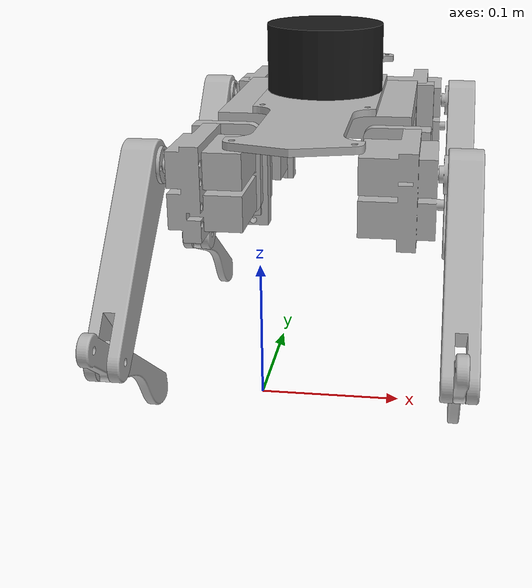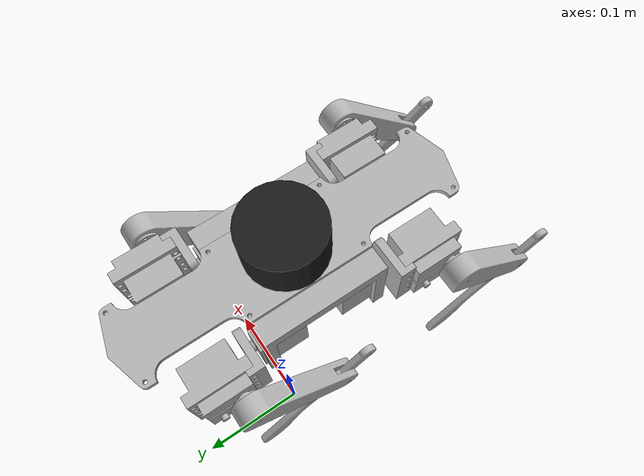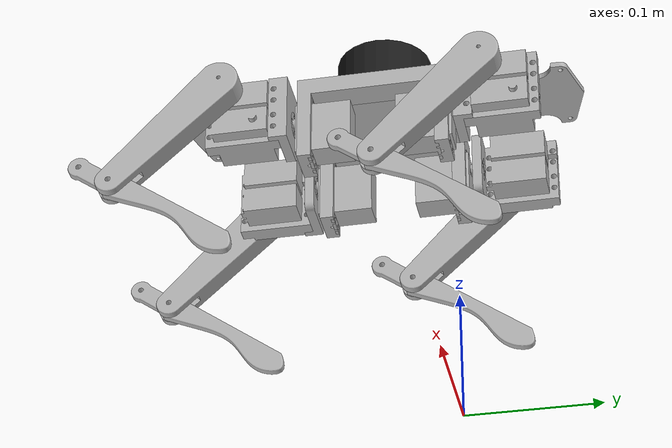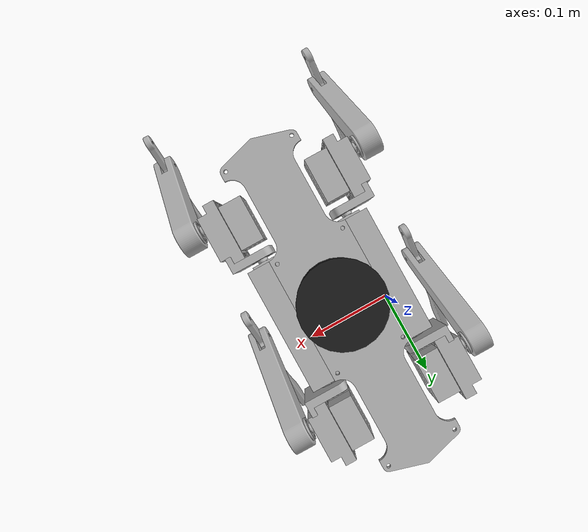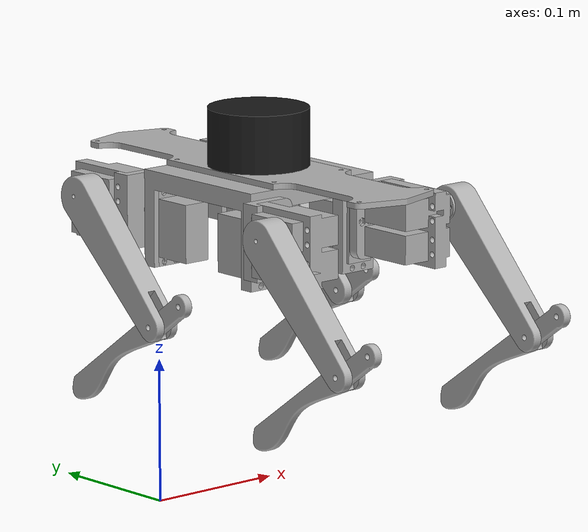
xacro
<?xml version="1.0"?>
<robot name="spiderx" xmlns:xacro="http://www.ros.org/wiki/xacro">

  <xacro:arg name="mount_x" default="0.0"/>
  <xacro:arg name="mount_y" default="0.0"/>
  <xacro:arg name="mount_z" default="0.125"/>
  <xacro:arg name="mount_yaw" default="0.0"/>

  <xacro:include filename="$(find spiderx_description)/urdf/spiderx.urdf.xacro"/>

  <link name="world"/>

  <joint name="spiderx_fixed_base_weld" type="fixed">
    <parent link="world"/>
    <child link="dummy_link"/>
    <origin xyz="$(arg mount_x) $(arg mount_y) $(arg mount_z)" rpy="0 0 $(arg mount_yaw)"/>
  </joint>

</robot>

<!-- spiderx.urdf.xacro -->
<robot name="spiderx" xmlns:xacro="http://www.ros.org/wiki/xacro">

<xacro:arg name="sim_backend" default="classic" />
<xacro:property name="sim_backend" value="$(arg sim_backend)" />
<xacro:unless value="${sim_backend in ['classic', 'fortress', 'none']}">
  ${xacro.fatal("sim_backend must be 'classic', 'fortress' or 'none', got '" + sim_backend + "'")}
</xacro:unless>

<xacro:arg name="enable_control" default="false" />
<xacro:arg name="controllers_file" default="" />
<xacro:property name="enable_control" value="$(arg enable_control)" />
<xacro:if value="${enable_control and sim_backend != 'fortress'}">
  ${xacro.fatal("enable_control:=true is only supported with sim_backend:=fortress")}
</xacro:if>
<xacro:if value="${enable_control and '$(arg controllers_file)' == ''}">
  ${xacro.fatal("enable_control:=true requires controllers_file:=/absolute/path/to/controllers.yaml")}
</xacro:if>

<xacro:include filename="$(find spiderx_description)/urdf/materials.xacro" />
<xacro:if value="${sim_backend == 'classic'}">
  <xacro:include filename="$(find spiderx_description)/urdf/spiderx.trans" />
  <xacro:include filename="$(find spiderx_description)/urdf/spiderx.gazebo" />
</xacro:if>
<xacro:if value="${sim_backend == 'fortress'}">
  <xacro:include filename="$(find spiderx_description)/urdf/spiderx_fortress.gazebo.xacro" />
</xacro:if>
<xacro:if value="${sim_backend == 'fortress' and enable_control}">
  <xacro:include filename="$(find spiderx_description)/urdf/spiderx_fortress_control.xacro" />
</xacro:if>

<link name="dummy_link">
</link>

<joint name="dummy_joint" type="fixed">
  <parent link="dummy_link"/>
  <child link="base_link"/>
</joint>

<link name="base_link">
  <inertial>
    <origin xyz="0.05100000000000491 -0.04499999999999987 0.0924979814706024" rpy="0 0 0"/>
    <mass value="0.7776425370322263"/>
    <inertia ixx="0.001511" iyy="0.001544" izz="0.0026" ixy="0.0" iyz="0.0" ixz="0.0"/>
  </inertial>
  <visual>
    <origin xyz="0 0 0" rpy="0 0 0"/>
    <geometry>
      <mesh filename="file://$(find spiderx_description)/meshes/base_link.stl" scale="0.001 0.001 0.001"/>
    </geometry>
    <material name="silver"/>
  </visual>
  <collision>
    <origin xyz="0 0 0" rpy="0 0 0"/>
    <geometry>
      <mesh filename="file://$(find spiderx_description)/meshes/base_link.stl" scale="0.001 0.001 0.001"/>
    </geometry>
  </collision>
</link>

<link name="b_s4_1">
  <inertial>
    <origin xyz="0.005 -0.010335860777646774 -0.02396530677100231" rpy="0 0 0"/>
    <mass value="0.2623017408147158"/>
    <inertia ixx="7.3e-05" iyy="4.6e-05" izz="4.5e-05" ixy="0.0" iyz="-0.0" ixz="0.0"/>
  </inertial>
  <visual>
    <origin xyz="-0.005 -0.0024 -0.091" rpy="0 0 0"/>
    <geometry>
      <mesh filename="file://$(find spiderx_description)/meshes/b_s4_1.stl" scale="0.001 0.001 0.001"/>
    </geometry>
    <material name="silver"/>
  </visual>
  <collision>
    <origin xyz="-0.005 -0.0024 -0.091" rpy="0 0 0"/>
    <geometry>
      <mesh filename="file://$(find spiderx_description)/meshes/b_s4_1.stl" scale="0.001 0.001 0.001"/>
    </geometry>
  </collision>
</link>

<link name="b_s1_1">
  <inertial>
    <origin xyz="-0.005000000000000088 0.010335860777646755 -0.02396530677100231" rpy="0 0 0"/>
    <mass value="0.2623017408147158"/>
    <inertia ixx="7.3e-05" iyy="4.6e-05" izz="4.5e-05" ixy="0.0" iyz="0.0" ixz="0.0"/>
  </inertial>
  <visual>
    <origin xyz="-0.097 0.0924 -0.091" rpy="0 0 0"/>
    <geometry>
      <mesh filename="file://$(find spiderx_description)/meshes/b_s1_1.stl" scale="0.001 0.001 0.001"/>
    </geometry>
    <material name="silver"/>
  </visual>
  <collision>
    <origin xyz="-0.097 0.0924 -0.091" rpy="0 0 0"/>
    <geometry>
      <mesh filename="file://$(find spiderx_description)/meshes/b_s1_1.stl" scale="0.001 0.001 0.001"/>
    </geometry>
  </collision>
</link>

<link name="b_s2_1">
  <inertial>
    <origin xyz="-0.0050000000000000044 -0.01033586077764674 -0.02396530677100231" rpy="0 0 0"/>
    <mass value="0.2623017408147158"/>
    <inertia ixx="7.3e-05" iyy="4.6e-05" izz="4.5e-05" ixy="0.0" iyz="-0.0" ixz="0.0"/>
  </inertial>
  <visual>
    <origin xyz="-0.097 -0.0024 -0.091" rpy="0 0 0"/>
    <geometry>
      <mesh filename="file://$(find spiderx_description)/meshes/b_s2_1.stl" scale="0.001 0.001 0.001"/>
    </geometry>
    <material name="silver"/>
  </visual>
  <collision>
    <origin xyz="-0.097 -0.0024 -0.091" rpy="0 0 0"/>
    <geometry>
      <mesh filename="file://$(find spiderx_description)/meshes/b_s2_1.stl" scale="0.001 0.001 0.001"/>
    </geometry>
  </collision>
</link>

<link name="b_s3_1">
  <inertial>
    <origin xyz="-0.005000000000000011 0.010335860777646755 -0.023965306771002323" rpy="0 0 0"/>
    <mass value="0.2623017408147158"/>
    <inertia ixx="7.3e-05" iyy="4.6e-05" izz="4.5e-05" ixy="0.0" iyz="0.0" ixz="0.0"/>
  </inertial>
  <visual>
    <origin xyz="-0.015 0.0924 -0.091" rpy="0 0 0"/>
    <geometry>
      <mesh filename="file://$(find spiderx_description)/meshes/b_s3_1.stl" scale="0.001 0.001 0.001"/>
    </geometry>
    <material name="silver"/>
  </visual>
  <collision>
    <origin xyz="-0.015 0.0924 -0.091" rpy="0 0 0"/>
    <geometry>
      <mesh filename="file://$(find spiderx_description)/meshes/b_s3_1.stl" scale="0.001 0.001 0.001"/>
    </geometry>
  </collision>
</link>

<link name="b_s1_c_horn_1">
  <inertial>
    <origin xyz="1.9542700790964318e-13 0.0002969285186710108 -9.71445146547012e-17" rpy="0 0 0"/>
    <mass value="0.004911019644749942"/>
    <!-- PLACEHOLDER inertia, not CAD-exact (CAD ~1.2e-7..2.3e-7 was rounded to 0 by the
         exporter). Physically valid; kept unchanged. See docs/URDF_INERTIA_AUDIT.md -->
    <inertia ixx="1e-6" iyy="1e-6" izz="1e-6" ixy="-0.0" iyz="-0.0" ixz="0.0"/>
  </inertial>
  <visual>
    <origin xyz="-0.092 0.1061 -0.07725" rpy="0 0 0"/>
    <geometry>
      <mesh filename="file://$(find spiderx_description)/meshes/b_s1_c_horn_1.stl" scale="0.001 0.001 0.001"/>
    </geometry>
    <material name="silver"/>
  </visual>
  <collision>
    <origin xyz="-0.092 0.1061 -0.07725" rpy="0 0 0"/>
    <geometry>
      <mesh filename="file://$(find spiderx_description)/meshes/b_s1_c_horn_1.stl" scale="0.001 0.001 0.001"/>
    </geometry>
  </collision>
</link>

<link name="b_s3_c_horn_1">
  <inertial>
    <origin xyz="1.9533680228889239e-13 0.00029692851867103853 -1.249000902703301e-16" rpy="0 0 0"/>
    <mass value="0.004911019644749942"/>
    <!-- PLACEHOLDER inertia, not CAD-exact (CAD ~1.2e-7..2.3e-7 was rounded to 0 by the
         exporter). Physically valid; kept unchanged. See docs/URDF_INERTIA_AUDIT.md -->
    <inertia ixx="1e-6" iyy="1e-6" izz="1e-6" ixy="-0.0" iyz="-0.0" ixz="0.0"/>
  </inertial>
  <visual>
    <origin xyz="-0.01 0.1061 -0.07725" rpy="0 0 0"/>
    <geometry>
      <mesh filename="file://$(find spiderx_description)/meshes/b_s3_c_horn_1.stl" scale="0.001 0.001 0.001"/>
    </geometry>
    <material name="silver"/>
  </visual>
  <collision>
    <origin xyz="-0.01 0.1061 -0.07725" rpy="0 0 0"/>
    <geometry>
      <mesh filename="file://$(find spiderx_description)/meshes/b_s3_c_horn_1.stl" scale="0.001 0.001 0.001"/>
    </geometry>
  </collision>
</link>

<link name="b_s2_c_horn_1">
  <inertial>
    <origin xyz="1.9531598560718066e-13 -0.000296928518671042 -1.1102230246251565e-16" rpy="0 0 0"/>
    <mass value="0.004911019644749942"/>
    <!-- PLACEHOLDER inertia, not CAD-exact (CAD ~1.2e-7..2.3e-7 was rounded to 0 by the
         exporter). Physically valid; kept unchanged. See docs/URDF_INERTIA_AUDIT.md -->
    <inertia ixx="1e-6" iyy="1e-6" izz="1e-6" ixy="0.0" iyz="0.0" ixz="0.0"/>
  </inertial>
  <visual>
    <origin xyz="-0.092 -0.0161 -0.07725" rpy="0 0 0"/>
    <geometry>
      <mesh filename="file://$(find spiderx_description)/meshes/b_s2_c_horn_1.stl" scale="0.001 0.001 0.001"/>
    </geometry>
    <material name="silver"/>
  </visual>
  <collision>
    <origin xyz="-0.092 -0.0161 -0.07725" rpy="0 0 0"/>
    <geometry>
      <mesh filename="file://$(find spiderx_description)/meshes/b_s2_c_horn_1.stl" scale="0.001 0.001 0.001"/>
    </geometry>
  </collision>
</link>

<link name="b_s4_c_horn_1">
  <inertial>
    <origin xyz="1.9534547590627227e-13 -0.00029692851867095527 -9.71445146547012e-17" rpy="0 0 0"/>
    <mass value="0.004911019644749942"/>
    <!-- PLACEHOLDER inertia, not CAD-exact (CAD ~1.2e-7..2.3e-7 was rounded to 0 by the
         exporter). Physically valid; kept unchanged. See docs/URDF_INERTIA_AUDIT.md -->
    <inertia ixx="1e-6" iyy="1e-6" izz="1e-6" ixy="0.0" iyz="0.0" ixz="0.0"/>
  </inertial>
  <visual>
    <origin xyz="-0.01 -0.0161 -0.07725" rpy="0 0 0"/>
    <geometry>
      <mesh filename="file://$(find spiderx_description)/meshes/b_s4_c_horn_1.stl" scale="0.001 0.001 0.001"/>
    </geometry>
    <material name="silver"/>
  </visual>
  <collision>
    <origin xyz="-0.01 -0.0161 -0.07725" rpy="0 0 0"/>
    <geometry>
      <mesh filename="file://$(find spiderx_description)/meshes/b_s4_c_horn_1.stl" scale="0.001 0.001 0.001"/>
    </geometry>
  </collision>
</link>

<link name="rr_holder_suppor1_1">
  <inertial>
    <origin xyz="0.008851885054504613 -0.004307212814628245 2.7755575615628914e-17" rpy="0 0 0"/>
    <mass value="0.10814549917555419"/>
    <inertia ixx="2.7e-05" iyy="4e-05" izz="1.5e-05" ixy="1e-06" iyz="-0.0" ixz="-0.0"/>
  </inertial>
  <visual>
    <origin xyz="-0.092 0.1051 -0.07725" rpy="0 0 0"/>
    <geometry>
      <mesh filename="file://$(find spiderx_description)/meshes/rr_holder_suppor1_1.stl" scale="0.001 0.001 0.001"/>
    </geometry>
    <material name="silver"/>
  </visual>
  <collision>
    <origin xyz="-0.092 0.1051 -0.07725" rpy="0 0 0"/>
    <geometry>
      <mesh filename="file://$(find spiderx_description)/meshes/rr_holder_suppor1_1.stl" scale="0.001 0.001 0.001"/>
    </geometry>
  </collision>
</link>

<link name="lr_holder_suppor1_1">
  <inertial>
    <origin xyz="-0.008851885054504538 -0.004307212814628217 -4.163336342344337e-17" rpy="0 0 0"/>
    <mass value="0.10814549917555413"/>
    <inertia ixx="2.7e-05" iyy="4e-05" izz="1.5e-05" ixy="-1e-06" iyz="-0.0" ixz="-0.0"/>
  </inertial>
  <visual>
    <origin xyz="-0.01 0.1051 -0.07725" rpy="0 0 0"/>
    <geometry>
      <mesh filename="file://$(find spiderx_description)/meshes/lr_holder_suppor1_1.stl" scale="0.001 0.001 0.001"/>
    </geometry>
    <material name="silver"/>
  </visual>
  <collision>
    <origin xyz="-0.01 0.1051 -0.07725" rpy="0 0 0"/>
    <geometry>
      <mesh filename="file://$(find spiderx_description)/meshes/lr_holder_suppor1_1.stl" scale="0.001 0.001 0.001"/>
    </geometry>
  </collision>
</link>

<link name="rf_holder_suppor1_1">
  <inertial>
    <origin xyz="0.008851885054504585 0.004307212814628305 0.0" rpy="0 0 0"/>
    <mass value="0.10814549917555413"/>
    <inertia ixx="2.7e-05" iyy="4e-05" izz="1.5e-05" ixy="-1e-06" iyz="-0.0" ixz="0.0"/>
  </inertial>
  <visual>
    <origin xyz="-0.092 -0.0151 -0.07725" rpy="0 0 0"/>
    <geometry>
      <mesh filename="file://$(find spiderx_description)/meshes/rf_holder_suppor1_1.stl" scale="0.001 0.001 0.001"/>
    </geometry>
    <material name="silver"/>
  </visual>
  <collision>
    <origin xyz="-0.092 -0.0151 -0.07725" rpy="0 0 0"/>
    <geometry>
      <mesh filename="file://$(find spiderx_description)/meshes/rf_holder_suppor1_1.stl" scale="0.001 0.001 0.001"/>
    </geometry>
  </collision>
</link>

<link name="lf_holder_suppor1_1">
  <inertial>
    <origin xyz="-0.008851885054504523 0.004307212814628288 2.7755575615628914e-17" rpy="0 0 0"/>
    <mass value="0.10814549917555416"/>
    <inertia ixx="2.7e-05" iyy="4e-05" izz="1.5e-05" ixy="1e-06" iyz="0.0" ixz="0.0"/>
  </inertial>
  <visual>
    <origin xyz="-0.01 -0.0151 -0.07725" rpy="0 0 0"/>
    <geometry>
      <mesh filename="file://$(find spiderx_description)/meshes/lf_holder_suppor1_1.stl" scale="0.001 0.001 0.001"/>
    </geometry>
    <material name="silver"/>
  </visual>
  <collision>
    <origin xyz="-0.01 -0.0151 -0.07725" rpy="0 0 0"/>
    <geometry>
      <mesh filename="file://$(find spiderx_description)/meshes/lf_holder_suppor1_1.stl" scale="0.001 0.001 0.001"/>
    </geometry>
  </collision>
</link>

<link name="rr_holder_1">
  <inertial>
    <origin xyz="-0.009722803880234943 -0.024000000000009333 -0.01649999999999563" rpy="0 0 0"/>
    <mass value="0.5981499101455445"/>
    <inertia ixx="0.000212" iyy="0.000186" izz="0.000174" ixy="0.0" iyz="-1e-06" ixz="-0.0"/>
  </inertial>
  <visual>
    <origin xyz="-0.112 0.1151 -0.09375" rpy="0 0 0"/>
    <geometry>
      <mesh filename="file://$(find spiderx_description)/meshes/rr_holder_1.stl" scale="0.001 0.001 0.001"/>
    </geometry>
    <material name="silver"/>
  </visual>
  <collision>
    <origin xyz="-0.112 0.1151 -0.09375" rpy="0 0 0"/>
    <geometry>
      <mesh filename="file://$(find spiderx_description)/meshes/rr_holder_1.stl" scale="0.001 0.001 0.001"/>
    </geometry>
  </collision>
</link>

<link name="rf_holder_1">
  <inertial>
    <origin xyz="-0.009722803880234818 0.023999999999990567 -0.01649999999999563" rpy="0 0 0"/>
    <mass value="0.5981499101455445"/>
    <inertia ixx="0.000212" iyy="0.000186" izz="0.000174" ixy="0.0" iyz="-1e-06" ixz="-0.0"/>
  </inertial>
  <visual>
    <origin xyz="-0.112 -0.0251 -0.09375" rpy="0 0 0"/>
    <geometry>
      <mesh filename="file://$(find spiderx_description)/meshes/rf_holder_1.stl" scale="0.001 0.001 0.001"/>
    </geometry>
    <material name="silver"/>
  </visual>
  <collision>
    <origin xyz="-0.112 -0.0251 -0.09375" rpy="0 0 0"/>
    <geometry>
      <mesh filename="file://$(find spiderx_description)/meshes/rf_holder_1.stl" scale="0.001 0.001 0.001"/>
    </geometry>
  </collision>
</link>

<link name="lr_holder_1">
  <inertial>
    <origin xyz="0.009722803880234781 -0.02399999999999057 -0.01649999999999567" rpy="0 0 0"/>
    <mass value="0.5981499101455445"/>
    <inertia ixx="0.000212" iyy="0.000186" izz="0.000174" ixy="0.0" iyz="1e-06" ixz="0.0"/>
  </inertial>
  <visual>
    <origin xyz="0.01 0.1151 -0.09375" rpy="0 0 0"/>
    <geometry>
      <mesh filename="file://$(find spiderx_description)/meshes/lr_holder_1.stl" scale="0.001 0.001 0.001"/>
    </geometry>
    <material name="silver"/>
  </visual>
  <collision>
    <origin xyz="0.01 0.1151 -0.09375" rpy="0 0 0"/>
    <geometry>
      <mesh filename="file://$(find spiderx_description)/meshes/lr_holder_1.stl" scale="0.001 0.001 0.001"/>
    </geometry>
  </collision>
</link>

<link name="lf_holder_1">
  <inertial>
    <origin xyz="0.009722803880235074 0.02400000000000933 -0.01649999999999563" rpy="0 0 0"/>
    <mass value="0.5981499101455445"/>
    <inertia ixx="0.000212" iyy="0.000186" izz="0.000174" ixy="0.0" iyz="1e-06" ixz="0.0"/>
  </inertial>
  <visual>
    <origin xyz="0.01 -0.0251 -0.09375" rpy="0 0 0"/>
    <geometry>
      <mesh filename="file://$(find spiderx_description)/meshes/lf_holder_1.stl" scale="0.001 0.001 0.001"/>
    </geometry>
    <material name="silver"/>
  </visual>
  <collision>
    <origin xyz="0.01 -0.0251 -0.09375" rpy="0 0 0"/>
    <geometry>
      <mesh filename="file://$(find spiderx_description)/meshes/lf_holder_1.stl" scale="0.001 0.001 0.001"/>
    </geometry>
  </collision>
</link>

<link name="rr_c_horn_1">
  <inertial>
    <origin xyz="-0.0002969285186709414 1.3877787807814457e-16 -1.9548251906087444e-13" rpy="0 0 0"/>
    <mass value="0.004911019644749942"/>
    <!-- PLACEHOLDER inertia, not CAD-exact (CAD ~1.2e-7..2.3e-7 was rounded to 0 by the
         exporter). Physically valid; kept unchanged. See docs/URDF_INERTIA_AUDIT.md -->
    <inertia ixx="1e-6" iyy="1e-6" izz="1e-6" ixy="0.0" iyz="0.0" ixz="-0.0"/>
  </inertial>
  <visual>
    <origin xyz="-0.1257 0.14935 -0.08875" rpy="0 0 0"/>
    <geometry>
      <mesh filename="file://$(find spiderx_description)/meshes/rr_c_horn_1.stl" scale="0.001 0.001 0.001"/>
    </geometry>
    <material name="silver"/>
  </visual>
  <collision>
    <origin xyz="-0.1257 0.14935 -0.08875" rpy="0 0 0"/>
    <geometry>
      <mesh filename="file://$(find spiderx_description)/meshes/rr_c_horn_1.stl" scale="0.001 0.001 0.001"/>
    </geometry>
  </collision>
</link>

<link name="rr_thigh_1">
  <inertial>
    <origin xyz="0.009040884172903663 -0.03228680444260626 -0.03228053393594165" rpy="0 0 0"/>
    <mass value="0.4204100883578535"/>
    <inertia ixx="0.000532" iyy="0.000278" izz="0.000278" ixy="-1e-06" iyz="-0.000243" ixz="-1e-06"/>
  </inertial>
  <visual>
    <origin xyz="-0.1267 0.14935 -0.08875" rpy="0 0 0"/>
    <geometry>
      <mesh filename="file://$(find spiderx_description)/meshes/rr_thigh_1.stl" scale="0.001 0.001 0.001"/>
    </geometry>
    <material name="silver"/>
  </visual>
  <collision>
    <origin xyz="-0.1267 0.14935 -0.08875" rpy="0 0 0"/>
    <geometry>
      <mesh filename="file://$(find spiderx_description)/meshes/rr_thigh_1.stl" scale="0.001 0.001 0.001"/>
    </geometry>
  </collision>
</link>

<link name="rf_c_horn_1">
  <inertial>
    <origin xyz="-0.00029692851867108017 1.9537843565231583e-13 -9.71445146547012e-17" rpy="0 0 0"/>
    <mass value="0.004911019644749942"/>
    <!-- PLACEHOLDER inertia, not CAD-exact (CAD ~1.2e-7..2.3e-7 was rounded to 0 by the
         exporter). Physically valid; kept unchanged. See docs/URDF_INERTIA_AUDIT.md -->
    <inertia ixx="1e-6" iyy="1e-6" izz="1e-6" ixy="0.0" iyz="0.0" ixz="0.0"/>
  </inertial>
  <visual>
    <origin xyz="-0.1257 -0.03885 -0.08875" rpy="0 0 0"/>
    <geometry>
      <mesh filename="file://$(find spiderx_description)/meshes/rf_c_horn_1.stl" scale="0.001 0.001 0.001"/>
    </geometry>
    <material name="silver"/>
  </visual>
  <collision>
    <origin xyz="-0.1257 -0.03885 -0.08875" rpy="0 0 0"/>
    <geometry>
      <mesh filename="file://$(find spiderx_description)/meshes/rf_c_horn_1.stl" scale="0.001 0.001 0.001"/>
    </geometry>
  </collision>
</link>

<link name="lr_c_horn_1">
  <inertial>
    <origin xyz="0.00029692851867092057 1.9551027463649007e-13 -1.3877787807814457e-16" rpy="0 0 0"/>
    <mass value="0.004911019644749942"/>
    <!-- PLACEHOLDER inertia, not CAD-exact (CAD ~1.2e-7..2.3e-7 was rounded to 0 by the
         exporter). Physically valid; kept unchanged. See docs/URDF_INERTIA_AUDIT.md -->
    <inertia ixx="1e-6" iyy="1e-6" izz="1e-6" ixy="-0.0" iyz="0.0" ixz="-0.0"/>
  </inertial>
  <visual>
    <origin xyz="0.0237 0.14935 -0.08875" rpy="0 0 0"/>
    <geometry>
      <mesh filename="file://$(find spiderx_description)/meshes/lr_c_horn_1.stl" scale="0.001 0.001 0.001"/>
    </geometry>
    <material name="silver"/>
  </visual>
  <collision>
    <origin xyz="0.0237 0.14935 -0.08875" rpy="0 0 0"/>
    <geometry>
      <mesh filename="file://$(find spiderx_description)/meshes/lr_c_horn_1.stl" scale="0.001 0.001 0.001"/>
    </geometry>
  </collision>
</link>

<link name="lf_c_horn_1">
  <inertial>
    <origin xyz="0.0002969285186709657 1.952465966681416e-13 -8.326672684688674e-17" rpy="0 0 0"/>
    <mass value="0.004911019644749942"/>
    <!-- PLACEHOLDER inertia, not CAD-exact (CAD ~1.2e-7..2.3e-7 was rounded to 0 by the
         exporter). Physically valid; kept unchanged. See docs/URDF_INERTIA_AUDIT.md -->
    <inertia ixx="1e-6" iyy="1e-6" izz="1e-6" ixy="-0.0" iyz="0.0" ixz="-0.0"/>
  </inertial>
  <visual>
    <origin xyz="0.0237 -0.03885 -0.08875" rpy="0 0 0"/>
    <geometry>
      <mesh filename="file://$(find spiderx_description)/meshes/lf_c_horn_1.stl" scale="0.001 0.001 0.001"/>
    </geometry>
    <material name="silver"/>
  </visual>
  <collision>
    <origin xyz="0.0237 -0.03885 -0.08875" rpy="0 0 0"/>
    <geometry>
      <mesh filename="file://$(find spiderx_description)/meshes/lf_c_horn_1.stl" scale="0.001 0.001 0.001"/>
    </geometry>
  </collision>
</link>

<link name="rf_thigh_1">
  <inertial>
    <origin xyz="0.009040884172903663 -0.03228680444260652 -0.03228053393594174" rpy="0 0 0"/>
    <mass value="0.4204100883578536"/>
    <inertia ixx="0.000532" iyy="0.000278" izz="0.000278" ixy="-1e-06" iyz="-0.000243" ixz="-1e-06"/>
  </inertial>
  <visual>
    <origin xyz="-0.1267 -0.03885 -0.08875" rpy="0 0 0"/>
    <geometry>
      <mesh filename="file://$(find spiderx_description)/meshes/rf_thigh_1.stl" scale="0.001 0.001 0.001"/>
    </geometry>
    <material name="silver"/>
  </visual>
  <collision>
    <origin xyz="-0.1267 -0.03885 -0.08875" rpy="0 0 0"/>
    <geometry>
      <mesh filename="file://$(find spiderx_description)/meshes/rf_thigh_1.stl" scale="0.001 0.001 0.001"/>
    </geometry>
  </collision>
</link>

<link name="lr_thigh_1">
  <inertial>
    <origin xyz="-0.009040884172903704 -0.0322805339359416 -0.03228680444260654" rpy="0 0 0"/>
    <mass value="0.42041008835785404"/>
    <inertia ixx="0.000532" iyy="0.000278" izz="0.000278" ixy="1e-06" iyz="-0.000243" ixz="1e-06"/>
  </inertial>
  <visual>
    <origin xyz="0.0247 0.14935 -0.08875" rpy="0 0 0"/>
    <geometry>
      <mesh filename="file://$(find spiderx_description)/meshes/lr_thigh_1.stl" scale="0.001 0.001 0.001"/>
    </geometry>
    <material name="silver"/>
  </visual>
  <collision>
    <origin xyz="0.0247 0.14935 -0.08875" rpy="0 0 0"/>
    <geometry>
      <mesh filename="file://$(find spiderx_description)/meshes/lr_thigh_1.stl" scale="0.001 0.001 0.001"/>
    </geometry>
  </collision>
</link>

<link name="lf_thigh_1">
  <inertial>
    <origin xyz="-0.009040884172903718 -0.03228053393594189 -0.032286804442606475" rpy="0 0 0"/>
    <mass value="0.4204100883578538"/>
    <inertia ixx="0.000532" iyy="0.000278" izz="0.000278" ixy="1e-06" iyz="-0.000243" ixz="1e-06"/>
  </inertial>
  <visual>
    <origin xyz="0.0247 -0.03885 -0.08875" rpy="0 0 0"/>
    <geometry>
      <mesh filename="file://$(find spiderx_description)/meshes/lf_thigh_1.stl" scale="0.001 0.001 0.001"/>
    </geometry>
    <material name="silver"/>
  </visual>
  <collision>
    <origin xyz="0.0247 -0.03885 -0.08875" rpy="0 0 0"/>
    <geometry>
      <mesh filename="file://$(find spiderx_description)/meshes/lf_thigh_1.stl" scale="0.001 0.001 0.001"/>
    </geometry>
  </collision>
</link>

<link name="rf_foot_1">
  <inertial>
    <origin xyz="-0.0030000043174171764 0.03041164447313976 -0.0201697512788014" rpy="0 0 0"/>
    <mass value="0.09755477017512412"/>
    <inertia ixx="0.000178" iyy="6.1e-05" izz="0.000118" ixy="0.0" iyz="8.2e-05" ixz="-0.0"/>
  </inertial>
  <visual>
    <origin xyz="-0.1387 0.038932 -0.010968" rpy="0 0 0"/>
    <geometry>
      <mesh filename="file://$(find spiderx_description)/meshes/rf_foot_1.stl" scale="0.001 0.001 0.001"/>
    </geometry>
    <material name="silver"/>
  </visual>
  <collision>
    <origin xyz="-0.1387 0.038932 -0.010968" rpy="0 0 0"/>
    <geometry>
      <mesh filename="file://$(find spiderx_description)/meshes/rf_foot_1.stl" scale="0.001 0.001 0.001"/>
    </geometry>
  </collision>
</link>

<link name="rr_foot_1">
  <inertial>
    <origin xyz="-0.003000004317417232 0.030411644473140348 -0.02016975127880133" rpy="0 0 0"/>
    <mass value="0.0975547701751245"/>
    <inertia ixx="0.000178" iyy="6.1e-05" izz="0.000118" ixy="0.0" iyz="8.2e-05" ixz="-0.0"/>
  </inertial>
  <visual>
    <origin xyz="-0.1387 0.227132 -0.010968" rpy="0 0 0"/>
    <geometry>
      <mesh filename="file://$(find spiderx_description)/meshes/rr_foot_1.stl" scale="0.001 0.001 0.001"/>
    </geometry>
    <material name="silver"/>
  </visual>
  <collision>
    <origin xyz="-0.1387 0.227132 -0.010968" rpy="0 0 0"/>
    <geometry>
      <mesh filename="file://$(find spiderx_description)/meshes/rr_foot_1.stl" scale="0.001 0.001 0.001"/>
    </geometry>
  </collision>
</link>

<link name="lr_foot_1">
  <inertial>
    <origin xyz="-0.0030000043174173256 0.030411644473140154 -0.020169751278801495" rpy="0 0 0"/>
    <mass value="0.0975547701751239"/>
    <inertia ixx="0.000178" iyy="6.1e-05" izz="0.000118" ixy="0.0" iyz="8.2e-05" ixz="-0.0"/>
  </inertial>
  <visual>
    <origin xyz="0.0307 0.227132 -0.010968" rpy="0 0 0"/>
    <geometry>
      <mesh filename="file://$(find spiderx_description)/meshes/lr_foot_1.stl" scale="0.001 0.001 0.001"/>
    </geometry>
    <material name="silver"/>
  </visual>
  <collision>
    <origin xyz="0.0307 0.227132 -0.010968" rpy="0 0 0"/>
    <geometry>
      <mesh filename="file://$(find spiderx_description)/meshes/lr_foot_1.stl" scale="0.001 0.001 0.001"/>
    </geometry>
  </collision>
</link>

<link name="lf_foot_1">
  <inertial>
    <origin xyz="0.00299999568258269 0.03041164447313985 -0.02016975127880144" rpy="0 0 0"/>
    <mass value="0.09755477017512418"/>
    <inertia ixx="0.000178" iyy="6.1e-05" izz="0.000118" ixy="0.0" iyz="8.2e-05" ixz="-0.0"/>
  </inertial>
  <visual>
    <origin xyz="0.0367 0.038932 -0.010968" rpy="0 0 0"/>
    <geometry>
      <mesh filename="file://$(find spiderx_description)/meshes/lf_foot_1.stl" scale="0.001 0.001 0.001"/>
    </geometry>
    <material name="silver"/>
  </visual>
  <collision>
    <origin xyz="0.0367 0.038932 -0.010968" rpy="0 0 0"/>
    <geometry>
      <mesh filename="file://$(find spiderx_description)/meshes/lf_foot_1.stl" scale="0.001 0.001 0.001"/>
    </geometry>
  </collision>
</link>

<link name="top_1">
  <inertial>
    <origin xyz="-0.034999999999999996 8.743006318923108e-16 0.0020000000000000434" rpy="0 0 0"/>
    <mass value="0.5252537896398041"/>
    <inertia ixx="0.003404" iyy="0.000162" izz="0.003565" ixy="0.0" iyz="-0.0" ixz="0.0"/>
  </inertial>
  <visual>
    <origin xyz="-0.086 0.045 -0.107" rpy="0 0 0"/>
    <geometry>
      <mesh filename="file://$(find spiderx_description)/meshes/top_1.stl" scale="0.001 0.001 0.001"/>
    </geometry>
    <material name="silver"/>
  </visual>
  <collision>
    <origin xyz="-0.086 0.045 -0.107" rpy="0 0 0"/>
    <geometry>
      <mesh filename="file://$(find spiderx_description)/meshes/top_1.stl" scale="0.001 0.001 0.001"/>
    </geometry>
  </collision>
</link>

<joint name="Rigid 1" type="fixed">
  <origin xyz="0.005 0.0024 0.091" rpy="0 0 0"/>
  <parent link="base_link"/>
  <child link="b_s4_1"/>
</joint>

<joint name="Rigid 2" type="fixed">
  <origin xyz="0.097 -0.0924 0.091" rpy="0 0 0"/>
  <parent link="base_link"/>
  <child link="b_s1_1"/>
</joint>

<joint name="Rigid 3" type="fixed">
  <origin xyz="0.097 0.0024 0.091" rpy="0 0 0"/>
  <parent link="base_link"/>
  <child link="b_s2_1"/>
</joint>

<joint name="Rigid 4" type="fixed">
  <origin xyz="0.015 -0.0924 0.091" rpy="0 0 0"/>
  <parent link="base_link"/>
  <child link="b_s3_1"/>
</joint>

<joint name="rr_hip" type="revolute">
  <origin xyz="-0.005 -0.0137 -0.01375" rpy="0 0 0"/>
  <parent link="b_s1_1"/>
  <child link="b_s1_c_horn_1"/>
  <axis xyz="0.0 -1.0 0.0"/>
  <limit upper="0.698132" lower="-0.610865" effort="100" velocity="100"/>
</joint>

<joint name="lr_hip" type="revolute">
  <origin xyz="-0.005 -0.0137 -0.01375" rpy="0 0 0"/>
  <parent link="b_s3_1"/>
  <child link="b_s3_c_horn_1"/>
  <axis xyz="0.0 -1.0 0.0"/>
  <limit upper="0.610865" lower="-0.698132" effort="100" velocity="100"/>
</joint>

<joint name="rf_hip" type="revolute">
  <origin xyz="-0.005 0.0137 -0.01375" rpy="0 0 0"/>
  <parent link="b_s2_1"/>
  <child link="b_s2_c_horn_1"/>
  <axis xyz="0.0 1.0 0.0"/>
  <limit upper="0.610865" lower="-0.698132" effort="100" velocity="100"/>
</joint>

<joint name="lf_hip" type="revolute">
  <origin xyz="0.005 0.0137 -0.01375" rpy="0 0 0"/>
  <parent link="b_s4_1"/>
  <child link="b_s4_c_horn_1"/>
  <axis xyz="-0.0 1.0 -0.0"/>
  <limit upper="0.698132" lower="-0.610865" effort="100" velocity="100"/>
</joint>

<joint name="Rigid 9" type="fixed">
  <origin xyz="0.0 0.001 0.0" rpy="0 0 0"/>
  <parent link="b_s1_c_horn_1"/>
  <child link="rr_holder_suppor1_1"/>
</joint>

<joint name="Rigid 10" type="fixed">
  <origin xyz="0.0 0.001 0.0" rpy="0 0 0"/>
  <parent link="b_s3_c_horn_1"/>
  <child link="lr_holder_suppor1_1"/>
</joint>

<joint name="Rigid 11" type="fixed">
  <origin xyz="0.0 -0.001 0.0" rpy="0 0 0"/>
  <parent link="b_s2_c_horn_1"/>
  <child link="rf_holder_suppor1_1"/>
</joint>

<joint name="Rigid 12" type="fixed">
  <origin xyz="0.0 -0.001 0.0" rpy="0 0 0"/>
  <parent link="b_s4_c_horn_1"/>
  <child link="lf_holder_suppor1_1"/>
</joint>

<joint name="Rigid 13" type="fixed">
  <origin xyz="0.02 -0.01 0.0165" rpy="0 0 0"/>
  <parent link="rr_holder_suppor1_1"/>
  <child link="rr_holder_1"/>
</joint>

<joint name="Rigid 14" type="fixed">
  <origin xyz="0.02 0.01 0.0165" rpy="0 0 0"/>
  <parent link="rf_holder_suppor1_1"/>
  <child link="rf_holder_1"/>
</joint>

<joint name="Rigid 15" type="fixed">
  <origin xyz="-0.02 -0.01 0.0165" rpy="0 0 0"/>
  <parent link="lr_holder_suppor1_1"/>
  <child link="lr_holder_1"/>
</joint>

<joint name="Rigid 16" type="fixed">
  <origin xyz="-0.02 0.01 0.0165" rpy="0 0 0"/>
  <parent link="lf_holder_suppor1_1"/>
  <child link="lf_holder_1"/>
</joint>

<joint name="rr_thigh_joint" type="revolute">
  <origin xyz="0.0137 -0.03425 -0.005" rpy="0 0 0"/>
  <parent link="rr_holder_1"/>
  <child link="rr_c_horn_1"/>
  <axis xyz="1.0 0.0 -0.0"/>
  <limit upper="0.610865" lower="-0.785398" effort="100" velocity="100"/>
</joint>

<joint name="Rigid 18" type="fixed">
  <origin xyz="0.001 0.0 0.0" rpy="0 0 0"/>
  <parent link="rr_c_horn_1"/>
  <child link="rr_thigh_1"/>
</joint>

<joint name="rf_thigh_joint" type="revolute">
  <origin xyz="0.0137 0.01375 -0.005" rpy="0 0 0"/>
  <parent link="rf_holder_1"/>
  <child link="rf_c_horn_1"/>
  <axis xyz="1.0 -0.0 0.0"/>
  <limit upper="0.610865" lower="-0.785398" effort="100" velocity="100"/>
</joint>

<joint name="lr_thigh_joint" type="revolute">
  <origin xyz="-0.0137 -0.03425 -0.005" rpy="0 0 0"/>
  <parent link="lr_holder_1"/>
  <child link="lr_c_horn_1"/>
  <axis xyz="-1.0 0.0 -0.0"/>
  <limit upper="0.785398" lower="-0.610865" effort="100" velocity="100"/>
</joint>

<joint name="lf_thigh_joint" type="revolute">
  <origin xyz="-0.0137 0.01375 -0.005" rpy="0 0 0"/>
  <parent link="lf_holder_1"/>
  <child link="lf_c_horn_1"/>
  <axis xyz="-1.0 0.0 0.0"/>
  <limit upper="0.785398" lower="-0.610865" effort="100" velocity="100"/>
</joint>

<joint name="Rigid 23" type="fixed">
  <origin xyz="0.001 0.0 0.0" rpy="0 0 0"/>
  <parent link="rf_c_horn_1"/>
  <child link="rf_thigh_1"/>
</joint>

<joint name="Rigid 24" type="fixed">
  <origin xyz="-0.001 0.0 0.0" rpy="0 0 0"/>
  <parent link="lr_c_horn_1"/>
  <child link="lr_thigh_1"/>
</joint>

<joint name="Rigid 25" type="fixed">
  <origin xyz="-0.001 0.0 0.0" rpy="0 0 0"/>
  <parent link="lf_c_horn_1"/>
  <child link="lf_thigh_1"/>
</joint>

<joint name="rf_foot_joint" type="revolute">
  <origin xyz="0.012 -0.077782 -0.077782" rpy="0 0 0"/>
  <parent link="rf_thigh_1"/>
  <child link="rf_foot_1"/>
  <axis xyz="-1.0 -0.0 -0.0"/>
  <limit upper="0.698132" lower="-0.436332" effort="100" velocity="100"/>
</joint>

<joint name="rr_foot_joint" type="revolute">
  <origin xyz="0.012 -0.077782 -0.077782" rpy="0 0 0"/>
  <parent link="rr_thigh_1"/>
  <child link="rr_foot_1"/>
  <axis xyz="-1.0 -0.0 0.0"/>
  <limit upper="0.698132" lower="-0.436332" effort="100" velocity="100"/>
</joint>

<joint name="lr_foot_joint" type="revolute">
  <origin xyz="-0.006 -0.077782 -0.077782" rpy="0 0 0"/>
  <parent link="lr_thigh_1"/>
  <child link="lr_foot_1"/>
  <axis xyz="-1.0 0.0 -0.0"/>
  <limit upper="0.698132" lower="-0.436332" effort="100" velocity="100"/>
</joint>

<joint name="lf_foot_joint" type="revolute">
  <origin xyz="-0.012 -0.077782 -0.077782" rpy="0 0 0"/>
  <parent link="lf_thigh_1"/>
  <child link="lf_foot_1"/>
  <axis xyz="1.0 -0.0 -0.0"/>
  <limit upper="0.436332" lower="-0.698132" effort="100" velocity="100"/>
</joint>

<joint name="Rigid 31" type="fixed">
  <origin xyz="0.086 -0.045 0.107" rpy="0 0 0"/>
  <parent link="base_link"/>
  <child link="top_1"/>
</joint>

<link name="lidar_link">
  <inertial>
    <!-- SIMULATION_ESTIMATE: 0.17 kg (nominal RPLidar A1-class mass, not weighed) as a
         solid cylinder r=0.035 m, h=0.040 m. See docs/URDF_INERTIA_AUDIT.md -->
    <origin xyz="0 0 -0.010" rpy="0 0 0"/>
    <mass value="0.17"/>
    <inertia ixx="7.47e-05" iyy="7.47e-05" izz="1.041e-04" ixy="0.0" iyz="0.0" ixz="0.0"/>
  </inertial>
  <visual>
    <origin xyz="0 0 -0.010" rpy="0 0 0"/>
    <geometry>
      <cylinder radius="0.035" length="0.040"/>
    </geometry>
    <material name="lidar_black">
      <color rgba="0.100 0.100 0.100 1.000"/>
    </material>
  </visual>
  <collision>
    <origin xyz="0 0 -0.010" rpy="0 0 0"/>
    <geometry>
      <cylinder radius="0.035" length="0.040"/>
    </geometry>
  </collision>
</link>

<joint name="lidar_joint" type="fixed">
  <origin xyz="0.051 -0.045 0.141" rpy="0 0 1.5707963267948966"/>
  <parent link="base_link"/>
  <child link="lidar_link"/>
</joint>

</robot>

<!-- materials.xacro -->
<robot name="ros_file" xmlns:xacro="http://www.ros.org/wiki/xacro" >

<material name="silver">
  <color rgba="0.700 0.700 0.700 1.000"/>
</material>

</robot>

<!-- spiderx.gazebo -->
<robot name="ros_file" xmlns:xacro="http://www.ros.org/wiki/xacro" >

<xacro:property name="body_color" value="Gazebo/Silver" />

<gazebo>
  <plugin filename="libgazebo_ros2_control.so" name="gazebo_ros2_control">
    <parameters>$(find spiderx_description)/config/controllers.yaml</parameters>
  </plugin>
</gazebo>

<gazebo reference="base_link">
  <material>${body_color}</material>
  <mu1>0.2</mu1>
  <mu2>0.2</mu2>
  <self_collide>false</self_collide>
  <gravity>true</gravity>
</gazebo>

<gazebo reference="b_s4_1">
  <material>${body_color}</material>
  <mu1>0.2</mu1>
  <mu2>0.2</mu2>
  <self_collide>false</self_collide>
</gazebo>

<gazebo reference="b_s1_1">
  <material>${body_color}</material>
  <mu1>0.2</mu1>
  <mu2>0.2</mu2>
  <self_collide>false</self_collide>
</gazebo>

<gazebo reference="b_s2_1">
  <material>${body_color}</material>
  <mu1>0.2</mu1>
  <mu2>0.2</mu2>
  <self_collide>false</self_collide>
</gazebo>

<gazebo reference="b_s3_1">
  <material>${body_color}</material>
  <mu1>0.2</mu1>
  <mu2>0.2</mu2>
  <self_collide>false</self_collide>
</gazebo>

<gazebo reference="b_s1_c_horn_1">
  <material>${body_color}</material>
  <mu1>0.2</mu1>
  <mu2>0.2</mu2>
  <self_collide>false</self_collide>
</gazebo>

<gazebo reference="b_s3_c_horn_1">
  <material>${body_color}</material>
  <mu1>0.2</mu1>
  <mu2>0.2</mu2>
  <self_collide>false</self_collide>
</gazebo>

<gazebo reference="b_s2_c_horn_1">
  <material>${body_color}</material>
  <mu1>0.2</mu1>
  <mu2>0.2</mu2>
  <self_collide>false</self_collide>
</gazebo>

<gazebo reference="b_s4_c_horn_1">
  <material>${body_color}</material>
  <mu1>0.2</mu1>
  <mu2>0.2</mu2>
  <self_collide>false</self_collide>
</gazebo>

<gazebo reference="rr_holder_suppor1_1">
  <material>${body_color}</material>
  <mu1>0.2</mu1>
  <mu2>0.2</mu2>
  <self_collide>false</self_collide>
</gazebo>

<gazebo reference="lr_holder_suppor1_1">
  <material>${body_color}</material>
  <mu1>0.2</mu1>
  <mu2>0.2</mu2>
  <self_collide>false</self_collide>
</gazebo>

<gazebo reference="rf_holder_suppor1_1">
  <material>${body_color}</material>
  <mu1>0.2</mu1>
  <mu2>0.2</mu2>
  <self_collide>false</self_collide>
</gazebo>

<gazebo reference="lf_holder_suppor1_1">
  <material>${body_color}</material>
  <mu1>0.2</mu1>
  <mu2>0.2</mu2>
  <self_collide>false</self_collide>
</gazebo>

<gazebo reference="rr_holder_1">
  <material>${body_color}</material>
  <mu1>0.2</mu1>
  <mu2>0.2</mu2>
  <self_collide>false</self_collide>
</gazebo>

<gazebo reference="rf_holder_1">
  <material>${body_color}</material>
  <mu1>0.2</mu1>
  <mu2>0.2</mu2>
  <self_collide>false</self_collide>
</gazebo>

<gazebo reference="lr_holder_1">
  <material>${body_color}</material>
  <mu1>0.2</mu1>
  <mu2>0.2</mu2>
  <self_collide>false</self_collide>
</gazebo>

<gazebo reference="lf_holder_1">
  <material>${body_color}</material>
  <mu1>0.2</mu1>
  <mu2>0.2</mu2>
  <self_collide>false</self_collide>
</gazebo>

<gazebo reference="rr_c_horn_1">
  <material>${body_color}</material>
  <mu1>0.2</mu1>
  <mu2>0.2</mu2>
  <self_collide>false</self_collide>
</gazebo>

<gazebo reference="rr_thigh_1">
  <material>${body_color}</material>
  <mu1>0.2</mu1>
  <mu2>0.2</mu2>
  <self_collide>false</self_collide>
</gazebo>

<gazebo reference="rf_c_horn_1">
  <material>${body_color}</material>
  <mu1>0.2</mu1>
  <mu2>0.2</mu2>
  <self_collide>false</self_collide>
</gazebo>

<gazebo reference="lr_c_horn_1">
  <material>${body_color}</material>
  <mu1>0.2</mu1>
  <mu2>0.2</mu2>
  <self_collide>false</self_collide>
</gazebo>

<gazebo reference="lf_c_horn_1">
  <material>${body_color}</material>
  <mu1>0.2</mu1>
  <mu2>0.2</mu2>
  <self_collide>false</self_collide>
</gazebo>

<gazebo reference="rf_thigh_1">
  <material>${body_color}</material>
  <mu1>0.2</mu1>
  <mu2>0.2</mu2>
  <self_collide>false</self_collide>
</gazebo>

<gazebo reference="lr_thigh_1">
  <material>${body_color}</material>
  <mu1>0.2</mu1>
  <mu2>0.2</mu2>
  <self_collide>false</self_collide>
</gazebo>

<gazebo reference="lf_thigh_1">
  <material>${body_color}</material>
  <mu1>0.2</mu1>
  <mu2>0.2</mu2>
  <self_collide>false</self_collide>
</gazebo>

<gazebo reference="rf_foot_1">
  <material>${body_color}</material>
  <mu1>0.2</mu1>
  <mu2>0.2</mu2>
  <self_collide>false</self_collide>
</gazebo>

<gazebo reference="rr_foot_1">
  <material>${body_color}</material>
  <mu1>0.2</mu1>
  <mu2>0.2</mu2>
  <self_collide>false</self_collide>
</gazebo>

<gazebo reference="lr_foot_1">
  <material>${body_color}</material>
  <mu1>0.2</mu1>
  <mu2>0.2</mu2>
  <self_collide>false</self_collide>
</gazebo>

<gazebo reference="lf_foot_1">
  <material>${body_color}</material>
  <mu1>0.2</mu1>
  <mu2>0.2</mu2>
  <self_collide>false</self_collide>
</gazebo>

<gazebo reference="top_1">
  <material>${body_color}</material>
  <mu1>0.2</mu1>
  <mu2>0.2</mu2>
  <self_collide>false</self_collide>
</gazebo>

<gazebo reference="lidar_link">
  <sensor name="spiderx_lidar" type="ray">
    <always_on>true</always_on>
    <visualize>true</visualize>
    <update_rate>10</update_rate>
    <ray>
      <scan>
        <horizontal>
          <samples>360</samples>
          <resolution>1</resolution>
          <min_angle>-3.14159</min_angle>
          <max_angle>3.14159</max_angle>
        </horizontal>
      </scan>
      <range>
        <min>0.12</min>
        <max>12.0</max>
        <resolution>0.01</resolution>
      </range>
    </ray>
    <plugin name="spiderx_laser" filename="libgazebo_ros_ray_sensor.so">
      <ros>
        <remapping>~/out:=/scan</remapping>
      </ros>
      <output_type>sensor_msgs/LaserScan</output_type>
      <frame_name>lidar_link</frame_name>
    </plugin>
  </sensor>
</gazebo>

</robot>
